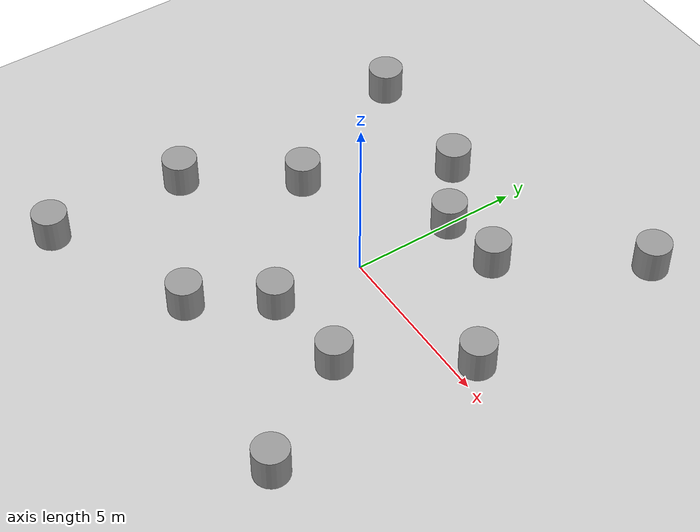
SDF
<sdf version="1.6">
 <world name="default">
  <light name="sun" type="directional">
   <pose>0 0 10 0 -0 0</pose>
   <diffuse>0.8 0.8 0.8 1</diffuse>
   <specular>0.1 0.1 0.1 1</specular>
   <attenuation>
    <range>1000</range>
    <constant>0.9</constant>
    <linear>0.01</linear>
    <quadratic>0.001</quadratic>
   </attenuation>
   <direction>-0.5 0.5 -1</direction>
  </light>
  <model name="ground_plane">
   <static>1</static>
   <link name="link">
    <collision name="collision">
     <geometry><plane><normal>0 0 1</normal><size>100 100</size></plane></geometry>
     <surface><friction><ode><mu>100</mu><mu2>50</mu2></ode></friction></surface>
    </collision>
    <visual name="visual">
     <cast_shadows>0</cast_shadows>
     <geometry><plane><normal>0 0 1</normal><size>100 100</size></plane></geometry>
     <material>
      <script><uri>file://media/materials/scripts/gazebo.material</uri><name>Gazebo/Grey</name></script>
     </material>
    </visual>
   </link>
  </model>
  <gravity>0 0 -9.8</gravity>
  <magnetic_field>6e-06 2.3e-05 -4.2e-05</magnetic_field>
  <atmosphere type="adiabatic"/>
  <physics name="default_physics" default="0" type="ode">
   <max_step_size>0.001</max_step_size>
   <real_time_factor>1</real_time_factor>
   <real_time_update_rate>1000</real_time_update_rate>
  </physics>
  <scene><ambient>0.4 0.4 0.4 1</ambient><background>0.7 0.7 0.7 1</background><shadows>1</shadows></scene>
  <spherical_coordinates>
   <surface_model>EARTH_WGS84</surface_model>
   <latitude_deg>0</latitude_deg>
   <longitude_deg>0</longitude_deg>
   <elevation>0</elevation>
   <heading_deg>0</heading_deg>
  </spherical_coordinates>
  <model name="unit_cylinder_0">
   <pose>-3.58653 0.426517 0.499998 3e-06 -3e-06 0</pose>
   <link name="link">
    <inertial>
     <mass>1</mass>
     <inertia><ixx>0.145833</ixx><ixy>0</ixy><ixz>0</ixz><iyy>0.145833</iyy><iyz>0</iyz><izz>0.125</izz></inertia>
    </inertial>
    <collision name="collision">
     <geometry><cylinder><radius>0.5</radius><length>1</length></cylinder></geometry>
    </collision>
    <visual name="visual">
     <geometry><cylinder><radius>0.5</radius><length>1</length></cylinder></geometry>
     <material>
      <script><name>Gazebo/Grey</name><uri>file://media/materials/scripts/gazebo.material</uri></script>
     </material>
    </visual>
   </link>
  </model>
  <model name="unit_cylinder_1">
   <pose>-1.70526 4.32055 0.499992 -3e-06 3e-06 0</pose>
   <link name="link">
    <inertial>
     <mass>1</mass>
     <inertia><ixx>0.145833</ixx><ixy>0</ixy><ixz>0</ixz><iyy>0.145833</iyy><iyz>0</iyz><izz>0.125</izz></inertia>
    </inertial>
    <collision name="collision">
     <geometry><cylinder><radius>0.5</radius><length>1</length></cylinder></geometry>
    </collision>
    <visual name="visual">
     <geometry><cylinder><radius>0.5</radius><length>1</length></cylinder></geometry>
     <material>
      <script><name>Gazebo/Grey</name><uri>file://media/materials/scripts/gazebo.material</uri></script>
     </material>
    </visual>
   </link>
  </model>
  <model name="unit_cylinder_2">
   <pose>1.89485 3.04901 0.499998 3e-06 -3e-06 0</pose>
   <link name="link">
    <inertial>
     <mass>1</mass>
     <inertia><ixx>0.145833</ixx><ixy>0</ixy><ixz>0</ixz><iyy>0.145833</iyy><iyz>0</iyz><izz>0.125</izz></inertia>
    </inertial>
    <collision name="collision">
     <geometry><cylinder><radius>0.5</radius><length>1</length></cylinder></geometry>
    </collision>
    <visual name="visual">
     <geometry><cylinder><radius>0.5</radius><length>1</length></cylinder></geometry>
     <material>
      <script><name>Gazebo/Grey</name><uri>file://media/materials/scripts/gazebo.material</uri></script>
     </material>
    </visual>
   </link>
  </model>
  <model name="unit_cylinder_3">
   <pose>-1.37334 -4.68215 0.499997 4e-06 4e-06 -0</pose>
   <link name="link">
    <inertial>
     <mass>1</mass>
     <inertia><ixx>0.145833</ixx><ixy>0</ixy><ixz>0</ixz><iyy>0.145833</iyy><iyz>0</iyz><izz>0.125</izz></inertia>
    </inertial>
    <collision name="collision">
     <geometry><cylinder><radius>0.5</radius><length>1</length></cylinder></geometry>
    </collision>
    <visual name="visual">
     <geometry><cylinder><radius>0.5</radius><length>1</length></cylinder></geometry>
     <material>
      <script><name>Gazebo/Grey</name><uri>file://media/materials/scripts/gazebo.material</uri></script>
     </material>
    </visual>
   </link>
  </model>
  <model name="unit_cylinder_4">
   <pose>2.50461 -2.47496 0.499998 3e-06 -3e-06 0</pose>
   <link name="link">
    <inertial>
     <mass>1</mass>
     <inertia><ixx>0.145833</ixx><ixy>0</ixy><ixz>0</ixz><iyy>0.145833</iyy><iyz>0</iyz><izz>0.125</izz></inertia>
    </inertial>
    <collision name="collision">
     <geometry><cylinder><radius>0.5</radius><length>1</length></cylinder></geometry>
    </collision>
    <visual name="visual">
     <geometry><cylinder><radius>0.5</radius><length>1</length></cylinder></geometry>
     <material>
      <script><name>Gazebo/Grey</name><uri>file://media/materials/scripts/gazebo.material</uri></script>
     </material>
    </visual>
   </link>
  </model>
  <model name="unit_cylinder_5">
   <pose>-5.53831 -2.46356 0.499997 4e-06 4e-06 -0</pose>
   <link name="link">
    <inertial>
     <mass>1</mass>
     <inertia><ixx>0.145833</ixx><ixy>0</ixy><ixz>0</ixz><iyy>0.145833</iyy><iyz>0</iyz><izz>0.125</izz></inertia>
    </inertial>
    <collision name="collision">
     <geometry><cylinder><radius>0.5</radius><length>1</length></cylinder></geometry>
    </collision>
    <visual name="visual">
     <geometry><cylinder><radius>0.5</radius><length>1</length></cylinder></geometry>
     <material>
      <script><name>Gazebo/Grey</name><uri>file://media/materials/scripts/gazebo.material</uri></script>
     </material>
    </visual>
   </link>
  </model>
  <model name="unit_cylinder_6">
   <pose>4.56204 0.602195 0.499997 0 -0 0</pose>
   <link name="link">
    <inertial>
     <mass>1</mass>
     <inertia><ixx>0.145833</ixx><ixy>0</ixy><ixz>0</ixz><iyy>0.145833</iyy><iyz>0</iyz><izz>0.125</izz></inertia>
    </inertial>
    <collision name="collision">
     <geometry><cylinder><radius>0.5</radius><length>1</length></cylinder></geometry>
    </collision>
    <visual name="visual">
     <geometry><cylinder><radius>0.5</radius><length>1</length></cylinder></geometry>
     <material>
      <script><name>Gazebo/Grey</name><uri>file://media/materials/scripts/gazebo.material</uri></script>
     </material>
    </visual>
   </link>
  </model>
  <model name="unit_cylinder_7">
   <pose>-5.56534 4.60729 0.499992 -3e-06 4e-06 0</pose>
   <link name="link">
    <inertial>
     <mass>1</mass>
     <inertia><ixx>0.145833</ixx><ixy>0</ixy><ixz>0</ixz><iyy>0.145833</iyy><iyz>0</iyz><izz>0.125</izz></inertia>
    </inertial>
    <collision name="collision">
     <geometry><cylinder><radius>0.5</radius><length>1</length></cylinder></geometry>
    </collision>
    <visual name="visual">
     <geometry><cylinder><radius>0.5</radius><length>1</length></cylinder></geometry>
     <material>
      <script><name>Gazebo/Grey</name><uri>file://media/materials/scripts/gazebo.material</uri></script>
     </material>
    </visual>
   </link>
  </model>
  <model name="unit_cylinder_8">
   <pose>4.36042 6.60813 0.499993 -3e-06 -3e-06 0</pose>
   <link name="link">
    <inertial>
     <mass>1</mass>
     <inertia><ixx>0.145833</ixx><ixy>0</ixy><ixz>0</ixz><iyy>0.145833</iyy><iyz>0</iyz><izz>0.125</izz></inertia>
    </inertial>
    <collision name="collision">
     <geometry><cylinder><radius>0.5</radius><length>1</length></cylinder></geometry>
    </collision>
    <visual name="visual">
     <geometry><cylinder><radius>0.5</radius><length>1</length></cylinder></geometry>
     <material>
      <script><name>Gazebo/Grey</name><uri>file://media/materials/scripts/gazebo.material</uri></script>
     </material>
    </visual>
   </link>
  </model>
  <model name="unit_cylinder_9">
   <pose>4.5106 -5.60698 0.499997 3e-06 3e-06 0</pose>
   <link name="link">
    <inertial>
     <mass>1</mass>
     <inertia><ixx>0.145833</ixx><ixy>0</ixy><ixz>0</ixz><iyy>0.145833</iyy><iyz>0</iyz><izz>0.125</izz></inertia>
    </inertial>
    <collision name="collision">
     <geometry><cylinder><radius>0.5</radius><length>1</length></cylinder></geometry>
    </collision>
    <visual name="visual">
     <geometry><cylinder><radius>0.5</radius><length>1</length></cylinder></geometry>
     <material>
      <script><name>Gazebo/Grey</name><uri>file://media/materials/scripts/gazebo.material</uri></script>
     </material>
    </visual>
   </link>
  </model>
  <model name="unit_cylinder_10">
   <pose>-5.62382 -6.5047 0.499993 -3e-06 -3e-06 0</pose>
   <link name="link">
    <inertial>
     <mass>1</mass>
     <inertia><ixx>0.145833</ixx><ixy>0</ixy><ixz>0</ixz><iyy>0.145833</iyy><iyz>0</iyz><izz>0.125</izz></inertia>
    </inertial>
    <collision name="collision">
     <geometry><cylinder><radius>0.5</radius><length>1</length></cylinder></geometry>
    </collision>
    <visual name="visual">
     <geometry><cylinder><radius>0.5</radius><length>1</length></cylinder></geometry>
     <material>
      <script><name>Gazebo/Grey</name><uri>file://media/materials/scripts/gazebo.material</uri></script>
     </material>
    </visual>
   </link>
  </model>
  <model name="unit_cylinder_11">
   <pose>0.056116 2.91495 0.499993 -3e-06 -4e-06 -0</pose>
   <link name="link">
    <inertial>
     <mass>1</mass>
     <inertia><ixx>0.145833</ixx><ixy>0</ixy><ixz>0</ixz><iyy>0.145833</iyy><iyz>0</iyz><izz>0.125</izz></inertia>
    </inertial>
    <collision name="collision">
     <geometry><cylinder><radius>0.5</radius><length>1</length></cylinder></geometry>
    </collision>
    <visual name="visual">
     <geometry><cylinder><radius>0.5</radius><length>1</length></cylinder></geometry>
     <material>
      <script><name>Gazebo/Grey</name><uri>file://media/materials/scripts/gazebo.material</uri></script>
     </material>
    </visual>
   </link>
  </model>
  <model name="unit_cylinder_12">
   <pose>-0.066114 -2.65639 0.499997 3e-06 4e-06 -0</pose>
   <link name="link">
    <inertial>
     <mass>1</mass>
     <inertia><ixx>0.145833</ixx><ixy>0</ixy><ixz>0</ixz><iyy>0.145833</iyy><iyz>0</iyz><izz>0.125</izz></inertia>
    </inertial>
    <collision name="collision">
     <geometry><cylinder><radius>0.5</radius><length>1</length></cylinder></geometry>
    </collision>
    <visual name="visual">
     <geometry><cylinder><radius>0.5</radius><length>1</length></cylinder></geometry>
     <material>
      <script><name>Gazebo/Grey</name><uri>file://media/materials/scripts/gazebo.material</uri></script>
     </material>
    </visual>
   </link>
  </model>
 </world>
</sdf>
